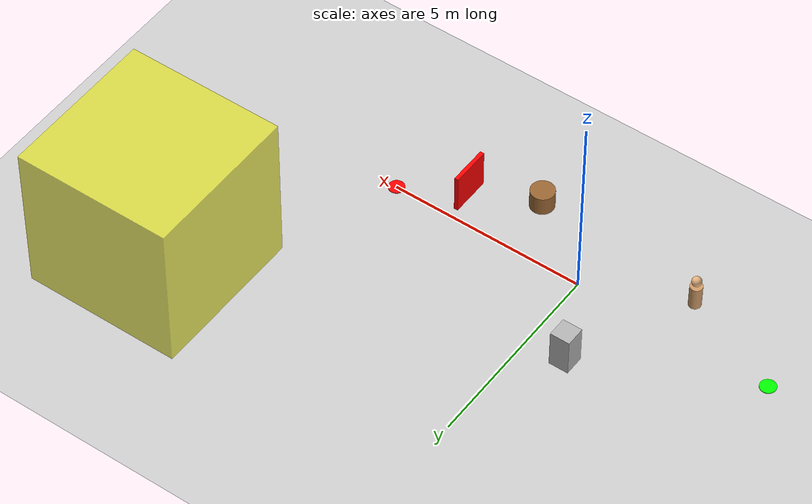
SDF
<?xml version="1.0" ?>
<sdf version="1.7">
  <world name="emu_testing_world">

    <!-- World Physics Settings -->
    <physics name="default_physics" default="true" type="ode">
      <max_step_size>0.001</max_step_size>
      <real_time_factor>1.0</real_time_factor>
      <real_time_update_rate>1000</real_time_update_rate>
      <gravity>0 0 -9.81</gravity>
    </physics>

    <!-- Scene Settings -->
    <scene>
      <ambient>0.5 0.5 0.5 1.0</ambient>
      <background>0.8 0.8 1.0 1.0</background>
      <shadows>true</shadows>
    </scene>

    <!-- Sun Light -->
    <light type="directional" name="sun">
      <cast_shadows>true</cast_shadows>
      <pose>0 0 10 0 0 0</pose>
      <diffuse>1.0 1.0 1.0 1</diffuse>
      <specular>0.2 0.2 0.2 1</specular>
      <attenuation>
        <range>1000</range>
        <constant>0.9</constant>
        <linear>0.01</linear>
        <quadratic>0.001</quadratic>
      </attenuation>
      <direction>-0.5 0.1 -0.9</direction>
    </light>

    <!-- Ground Plane -->
    <model name="ground_plane">
      <static>true</static>
      <link name="link">
        <collision name="collision">
          <geometry>
            <plane>
              <normal>0 0 1</normal>
              <size>100 100</size>
            </plane>
          </geometry>
          <surface>
            <friction>
              <ode>
                <mu>100</mu>
                <mu2>50</mu2>
              </ode>
            </friction>
          </surface>
        </collision>
        <visual name="visual">
          <geometry>
            <plane>
              <normal>0 0 1</normal>
              <size>100 100</size>
            </plane>
          </geometry>
          <material>
            <script>
              <uri>file://media/materials/scripts/gazebo.material</uri>
              <name>Gazebo/Grey</name>
            </script>
          </material>
        </visual>
      </link>
    </model>

    <!-- Walking Track Markers -->
    <model name="track_start">
      <static>true</static>
      <pose>-5 0 0.01 0 0 0</pose>
      <link name="link">
        <visual name="visual">
          <geometry>
            <cylinder>
              <radius>0.2</radius>
              <length>0.02</length>
            </cylinder>
          </geometry>
          <material>
            <ambient>0 1 0 1</ambient>
            <diffuse>0 1 0 1</diffuse>
          </material>
        </visual>
      </link>
    </model>

    <model name="track_end">
      <static>true</static>
      <pose>5 0 0.01 0 0 0</pose>
      <link name="link">
        <visual name="visual">
          <geometry>
            <cylinder>
              <radius>0.2</radius>
              <length>0.02</length>
            </cylinder>
          </geometry>
          <material>
            <ambient>1 0 0 1</ambient>
            <diffuse>1 0 0 1</diffuse>
          </material>
        </visual>
      </link>
    </model>

    <!-- Human Model for Testing -->
    <model name="walking_human">
      <pose>-3 0 1.7 0 0 0</pose>
      <link name="torso">
        <pose>0 0 0 0 0 0</pose>
        <inertial>
          <mass>50</mass>
          <inertia>
            <ixx>3.0</ixx>
            <iyy>3.0</iyy>
            <izz>1.0</izz>
          </inertia>
        </inertial>
        <collision name="torso_collision">
          <geometry>
            <cylinder>
              <radius>0.15</radius>
              <length>0.6</length>
            </cylinder>
          </geometry>
        </collision>
        <visual name="torso_visual">
          <geometry>
            <cylinder>
              <radius>0.15</radius>
              <length>0.6</length>
            </cylinder>
          </geometry>
          <material>
            <ambient>0.8 0.6 0.4 1</ambient>
            <diffuse>0.8 0.6 0.4 1</diffuse>
          </material>
        </visual>
      </link>

      <link name="head">
        <pose>0 0 0.45 0 0 0</pose>
        <inertial>
          <mass>5</mass>
          <inertia>
            <ixx>0.1</ixx>
            <iyy>0.1</iyy>
            <izz>0.1</izz>
          </inertia>
        </inertial>
        <collision name="head_collision">
          <geometry>
            <sphere>
              <radius>0.12</radius>
            </sphere>
          </geometry>
        </collision>
        <visual name="head_visual">
          <geometry>
            <sphere>
              <radius>0.12</radius>
            </sphere>
          </geometry>
          <material>
            <ambient>0.9 0.7 0.5 1</ambient>
            <diffuse>0.9 0.7 0.5 1</diffuse>
          </material>
        </visual>
      </link>

      <!-- Human Walking Animation Plugin -->
      <plugin name="human_walker" filename="libgazebo_ros_planar_move.so">
        <commandTopic>/human/cmd_vel</commandTopic>
        <odometryTopic>/human/odom</odometryTopic>
        <odometryFrame>odom</odometryFrame>
        <odometryRate>20.0</odometryRate>
        <robotBaseFrame>walking_human</robotBaseFrame>
      </plugin>

      <joint name="head_joint" type="fixed">
        <parent>torso</parent>
        <child>head</child>
      </joint>
    </model>

    <!-- Testing Obstacles -->
    <model name="obstacle_1">
      <static>true</static>
      <pose>-1 2 0.5 0 0 0</pose>
      <link name="link">
        <collision name="collision">
          <geometry>
            <box>
              <size>0.5 0.5 1.0</size>
            </box>
          </geometry>
        </collision>
        <visual name="visual">
          <geometry>
            <box>
              <size>0.5 0.5 1.0</size>
            </box>
          </geometry>
          <material>
            <ambient>0.7 0.7 0.7 1</ambient>
            <diffuse>0.7 0.7 0.7 1</diffuse>
          </material>
        </visual>
      </link>
    </model>

    <model name="obstacle_2">
      <static>true</static>
      <pose>2 -1.5 0.25 0 0 0</pose>
      <link name="link">
        <collision name="collision">
          <geometry>
            <cylinder>
              <radius>0.3</radius>
              <length>0.5</length>
            </cylinder>
          </geometry>
        </collision>
        <visual name="visual">
          <geometry>
            <cylinder>
              <radius>0.3</radius>
              <length>0.5</length>
            </cylinder>
          </geometry>
          <material>
            <ambient>0.6 0.4 0.2 1</ambient>
            <diffuse>0.6 0.4 0.2 1</diffuse>
          </material>
        </visual>
      </link>
    </model>

    <!-- Mare Island Maker Faire Environment -->
    <model name="faire_tent">
      <static>true</static>
      <pose>8 5 2 0 0 0</pose>
      <link name="link">
        <visual name="visual">
          <geometry>
            <box>
              <size>4 4 4</size>
            </box>
          </geometry>
          <material>
            <ambient>0.9 0.9 0.1 0.7</ambient>
            <diffuse>0.9 0.9 0.1 0.7</diffuse>
          </material>
        </visual>
      </link>
    </model>

    <!-- Camera and Sensor Testing Targets -->
    <model name="test_target_1">
      <static>true</static>
      <pose>3 0 1.5 0 0 1.57</pose>
      <link name="link">
        <visual name="visual">
          <geometry>
            <box>
              <size>1.0 0.1 1.0</size>
            </box>
          </geometry>
          <material>
            <ambient>1 0 0 1</ambient>
            <diffuse>1 0 0 1</diffuse>
          </material>
        </visual>
      </link>
    </model>

    <!-- GUI Settings -->
    <gui fullscreen='0'>
      <camera name='user_camera'>
        <pose frame=''>-2 -8 3 0 0.3 0.8</pose>
        <view_controller>orbit</view_controller>
        <projection_type>perspective</projection_type>
      </camera>
    </gui>

  </world>
</sdf>
